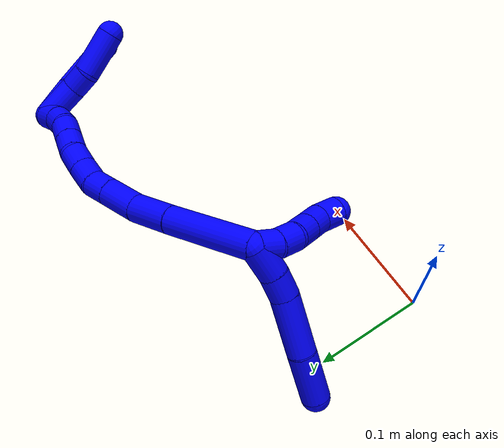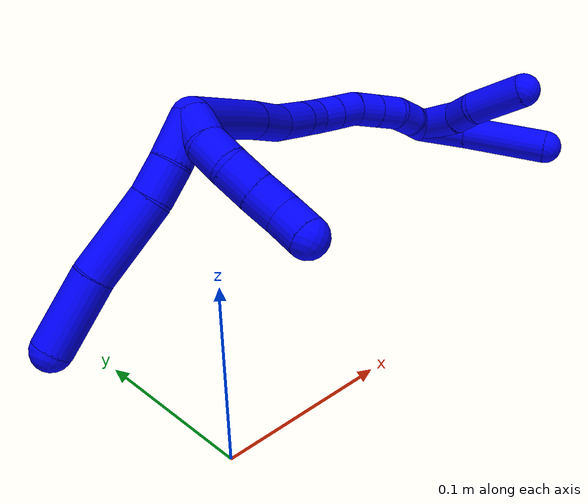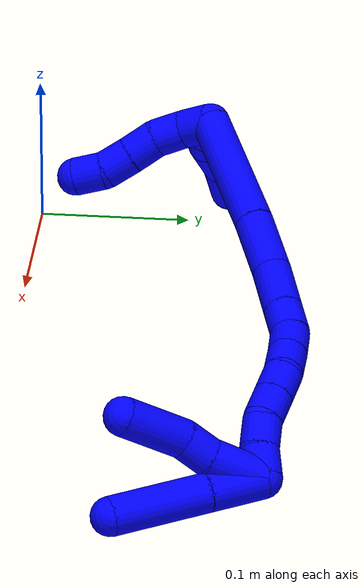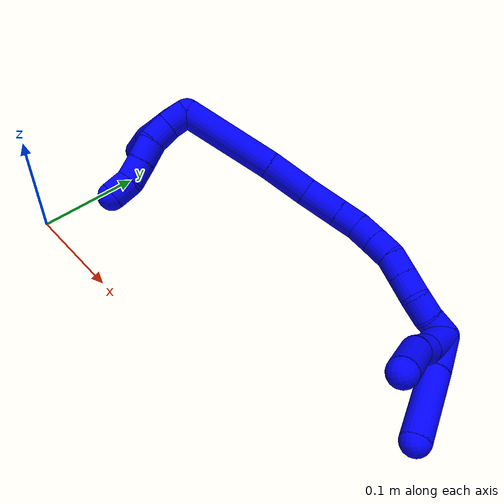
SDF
<sdf version="1.7">
 <world name="default">
  <model name="1">
   <static>0</static>
   <link name="1">
    <collision name="collision-cylinder-e_1_2_8">
     <pose>0.000418 0.001269 -0.014081 -3.05172 0.029547 -0.634919</pose>
     <geometry><cylinder><radius>0.0125</radius><length>0.028289</length></cylinder></geometry>
     <surface>
      <friction><ode><mu>1.16</mu><mu2>1.16</mu2><slip1>0</slip1><slip2>0</slip2></ode></friction>
      <contact><ode><kp>1e+06</kp><kd>1</kd><max_vel>0</max_vel><min_depth>0.001</min_depth></ode></contact>
     </surface>
    </collision>
    <visual name="visual-cylinder-e_1_2_8">
     <pose>0.000418 0.001269 -0.014081 -3.05172 0.029547 -0.634919</pose>
     <geometry><cylinder><radius>0.0125</radius><length>0.028289</length></cylinder></geometry>
     <material><ambient>0 0 1 1</ambient></material>
    </visual>
    <collision name="collision-cylinder-e_2_8_9">
     <pose>0.001131 0.004916 -0.038998 -2.92556 0.026648 -0.244531</pose>
     <geometry><cylinder><radius>0.0125</radius><length>0.022195</length></cylinder></geometry>
     <surface>
      <friction><ode><mu>1.16</mu><mu2>1.16</mu2><slip1>0</slip1><slip2>0</slip2></ode></friction>
      <contact><ode><kp>1e+06</kp><kd>1</kd><max_vel>0</max_vel><min_depth>0.001</min_depth></ode></contact>
     </surface>
    </collision>
    <visual name="visual-cylinder-e_2_8_9">
     <pose>0.001131 0.004916 -0.038998 -2.92556 0.026648 -0.244531</pose>
     <geometry><cylinder><radius>0.0125</radius><length>0.022195</length></cylinder></geometry>
     <material><ambient>0 0 1 1</ambient></material>
    </visual>
    <collision name="collision-cylinder-e_3_9_10">
     <pose>-6.1e-05 0.016591 -0.074307 -2.77855 -0.05678 0.307005</pose>
     <geometry><cylinder><radius>0.0125</radius><length>0.052444</length></cylinder></geometry>
     <surface>
      <friction><ode><mu>1.16</mu><mu2>1.16</mu2><slip1>0</slip1><slip2>0</slip2></ode></friction>
      <contact><ode><kp>1e+06</kp><kd>1</kd><max_vel>0</max_vel><min_depth>0.001</min_depth></ode></contact>
     </surface>
    </collision>
    <visual name="visual-cylinder-e_3_9_10">
     <pose>-6.1e-05 0.016591 -0.074307 -2.77855 -0.05678 0.307005</pose>
     <geometry><cylinder><radius>0.0125</radius><length>0.052444</length></cylinder></geometry>
     <material><ambient>0 0 1 1</ambient></material>
    </visual>
    <collision name="collision-cylinder-e_4_10_6">
     <pose>0.000226 0.033937 -0.120826 -2.79152 0.075484 -0.420722</pose>
     <geometry><cylinder><radius>0.0125</radius><length>0.047072</length></cylinder></geometry>
     <surface>
      <friction><ode><mu>1.16</mu><mu2>1.16</mu2><slip1>0</slip1><slip2>0</slip2></ode></friction>
      <contact><ode><kp>1e+06</kp><kd>1</kd><max_vel>0</max_vel><min_depth>0.001</min_depth></ode></contact>
     </surface>
    </collision>
    <visual name="visual-cylinder-e_4_10_6">
     <pose>0.000226 0.033937 -0.120826 -2.79152 0.075484 -0.420722</pose>
     <geometry><cylinder><radius>0.0125</radius><length>0.047072</length></cylinder></geometry>
     <material><ambient>0 0 1 1</ambient></material>
    </visual>
    <collision name="collision-cylinder-e_1_2_11">
     <pose>0.003786 -0.006665 -0.006422 2.33767 0.38829 0.86644</pose>
     <geometry><cylinder><radius>0.0125</radius><length>0.02</length></cylinder></geometry>
     <surface>
      <friction><ode><mu>1.16</mu><mu2>1.16</mu2><slip1>0</slip1><slip2>0</slip2></ode></friction>
      <contact><ode><kp>1e+06</kp><kd>1</kd><max_vel>0</max_vel><min_depth>0.001</min_depth></ode></contact>
     </surface>
    </collision>
    <visual name="visual-cylinder-e_1_2_11">
     <pose>0.003786 -0.006665 -0.006422 2.33767 0.38829 0.86644</pose>
     <geometry><cylinder><radius>0.0125</radius><length>0.02</length></cylinder></geometry>
     <material><ambient>0 0 1 1</ambient></material>
    </visual>
    <collision name="collision-cylinder-e_2_11_12">
     <pose>0.013006 -0.020477 -0.017249 2.12307 0.574415 0.973115</pose>
     <geometry><cylinder><radius>0.0125</radius><length>0.02</length></cylinder></geometry>
     <surface>
      <friction><ode><mu>1.16</mu><mu2>1.16</mu2><slip1>0</slip1><slip2>0</slip2></ode></friction>
      <contact><ode><kp>1e+06</kp><kd>1</kd><max_vel>0</max_vel><min_depth>0.001</min_depth></ode></contact>
     </surface>
    </collision>
    <visual name="visual-cylinder-e_2_11_12">
     <pose>0.013006 -0.020477 -0.017249 2.12307 0.574415 0.973115</pose>
     <geometry><cylinder><radius>0.0125</radius><length>0.02</length></cylinder></geometry>
     <material><ambient>0 0 1 1</ambient></material>
    </visual>
    <collision name="collision-cylinder-e_3_12_13">
     <pose>0.026015 -0.033037 -0.025301 2.16374 0.859592 1.42237</pose>
     <geometry><cylinder><radius>0.0125</radius><length>0.02</length></cylinder></geometry>
     <surface>
      <friction><ode><mu>1.16</mu><mu2>1.16</mu2><slip1>0</slip1><slip2>0</slip2></ode></friction>
      <contact><ode><kp>1e+06</kp><kd>1</kd><max_vel>0</max_vel><min_depth>0.001</min_depth></ode></contact>
     </surface>
    </collision>
    <visual name="visual-cylinder-e_3_12_13">
     <pose>0.026015 -0.033037 -0.025301 2.16374 0.859592 1.42237</pose>
     <geometry><cylinder><radius>0.0125</radius><length>0.02</length></cylinder></geometry>
     <material><ambient>0 0 1 1</ambient></material>
    </visual>
    <collision name="collision-cylinder-e_4_13_14">
     <pose>0.040972 -0.044261 -0.032376 2.10368 0.830321 1.3145</pose>
     <geometry><cylinder><radius>0.0125</radius><length>0.02</length></cylinder></geometry>
     <surface>
      <friction><ode><mu>1.16</mu><mu2>1.16</mu2><slip1>0</slip1><slip2>0</slip2></ode></friction>
      <contact><ode><kp>1e+06</kp><kd>1</kd><max_vel>0</max_vel><min_depth>0.001</min_depth></ode></contact>
     </surface>
    </collision>
    <visual name="visual-cylinder-e_4_13_14">
     <pose>0.040972 -0.044261 -0.032376 2.10368 0.830321 1.3145</pose>
     <geometry><cylinder><radius>0.0125</radius><length>0.02</length></cylinder></geometry>
     <material><ambient>0 0 1 1</ambient></material>
    </visual>
    <collision name="collision-cylinder-e_5_14_5">
     <pose>0.053002 -0.057858 -0.04002 2.06718 0.483422 0.784849</pose>
     <geometry><cylinder><radius>0.0125</radius><length>0.02</length></cylinder></geometry>
     <surface>
      <friction><ode><mu>1.16</mu><mu2>1.16</mu2><slip1>0</slip1><slip2>0</slip2></ode></friction>
      <contact><ode><kp>1e+06</kp><kd>1</kd><max_vel>0</max_vel><min_depth>0.001</min_depth></ode></contact>
     </surface>
    </collision>
    <visual name="visual-cylinder-e_5_14_5">
     <pose>0.053002 -0.057858 -0.04002 2.06718 0.483422 0.784849</pose>
     <geometry><cylinder><radius>0.0125</radius><length>0.02</length></cylinder></geometry>
     <material><ambient>0 0 1 1</ambient></material>
    </visual>
    <collision name="collision-cylinder-e_1_2_15">
     <pose>0.029939 0.02298 0.019354 -0.870836 0.783643 -0.379792</pose>
     <geometry><cylinder><radius>0.0125</radius><length>0.084829</length></cylinder></geometry>
     <surface>
      <friction><ode><mu>1.16</mu><mu2>1.16</mu2><slip1>0</slip1><slip2>0</slip2></ode></friction>
      <contact><ode><kp>1e+06</kp><kd>1</kd><max_vel>0</max_vel><min_depth>0.001</min_depth></ode></contact>
     </surface>
    </collision>
    <visual name="visual-cylinder-e_1_2_15">
     <pose>0.029939 0.02298 0.019354 -0.870836 0.783643 -0.379792</pose>
     <geometry><cylinder><radius>0.0125</radius><length>0.084829</length></cylinder></geometry>
     <material><ambient>0 0 1 1</ambient></material>
    </visual>
    <collision name="collision-cylinder-e_2_15_16">
     <pose>0.074719 0.056178 0.047211 -0.876756 0.840363 -0.412942</pose>
     <geometry><cylinder><radius>0.0125</radius><length>0.039848</length></cylinder></geometry>
     <surface>
      <friction><ode><mu>1.16</mu><mu2>1.16</mu2><slip1>0</slip1><slip2>0</slip2></ode></friction>
      <contact><ode><kp>1e+06</kp><kd>1</kd><max_vel>0</max_vel><min_depth>0.001</min_depth></ode></contact>
     </surface>
    </collision>
    <visual name="visual-cylinder-e_2_15_16">
     <pose>0.074719 0.056178 0.047211 -0.876756 0.840363 -0.412942</pose>
     <geometry><cylinder><radius>0.0125</radius><length>0.039848</length></cylinder></geometry>
     <material><ambient>0 0 1 1</ambient></material>
    </visual>
    <collision name="collision-cylinder-e_3_16_17">
     <pose>0.101976 0.07311 0.065208 -0.615548 0.818113 -0.273879</pose>
     <geometry><cylinder><radius>0.0125</radius><length>0.034022</length></cylinder></geometry>
     <surface>
      <friction><ode><mu>1.16</mu><mu2>1.16</mu2><slip1>0</slip1><slip2>0</slip2></ode></friction>
      <contact><ode><kp>1e+06</kp><kd>1</kd><max_vel>0</max_vel><min_depth>0.001</min_depth></ode></contact>
     </surface>
    </collision>
    <visual name="visual-cylinder-e_3_16_17">
     <pose>0.101976 0.07311 0.065208 -0.615548 0.818113 -0.273879</pose>
     <geometry><cylinder><radius>0.0125</radius><length>0.034022</length></cylinder></geometry>
     <material><ambient>0 0 1 1</ambient></material>
    </visual>
    <collision name="collision-cylinder-e_4_17_18">
     <pose>0.12192 0.083918 0.080522 -0.612964 0.813671 -0.271031</pose>
     <geometry><cylinder><radius>0.0125</radius><length>0.020717</length></cylinder></geometry>
     <surface>
      <friction><ode><mu>1.16</mu><mu2>1.16</mu2><slip1>0</slip1><slip2>0</slip2></ode></friction>
      <contact><ode><kp>1e+06</kp><kd>1</kd><max_vel>0</max_vel><min_depth>0.001</min_depth></ode></contact>
     </surface>
    </collision>
    <visual name="visual-cylinder-e_4_17_18">
     <pose>0.12192 0.083918 0.080522 -0.612964 0.813671 -0.271031</pose>
     <geometry><cylinder><radius>0.0125</radius><length>0.020717</length></cylinder></geometry>
     <material><ambient>0 0 1 1</ambient></material>
    </visual>
    <collision name="collision-cylinder-e_5_18_19">
     <pose>0.137233 0.088679 0.09281 -0.102967 0.87487 -0.048186</pose>
     <geometry><cylinder><radius>0.0125</radius><length>0.020287</length></cylinder></geometry>
     <surface>
      <friction><ode><mu>1.16</mu><mu2>1.16</mu2><slip1>0</slip1><slip2>0</slip2></ode></friction>
      <contact><ode><kp>1e+06</kp><kd>1</kd><max_vel>0</max_vel><min_depth>0.001</min_depth></ode></contact>
     </surface>
    </collision>
    <visual name="visual-cylinder-e_5_18_19">
     <pose>0.137233 0.088679 0.09281 -0.102967 0.87487 -0.048186</pose>
     <geometry><cylinder><radius>0.0125</radius><length>0.020287</length></cylinder></geometry>
     <material><ambient>0 0 1 1</ambient></material>
    </visual>
    <collision name="collision-cylinder-e_6_19_20">
     <pose>0.152646 0.089481 0.105794 -0.020501 0.863811 -0.00945</pose>
     <geometry><cylinder><radius>0.0125</radius><length>0.020067</length></cylinder></geometry>
     <surface>
      <friction><ode><mu>1.16</mu><mu2>1.16</mu2><slip1>0</slip1><slip2>0</slip2></ode></friction>
      <contact><ode><kp>1e+06</kp><kd>1</kd><max_vel>0</max_vel><min_depth>0.001</min_depth></ode></contact>
     </surface>
    </collision>
    <visual name="visual-cylinder-e_6_19_20">
     <pose>0.152646 0.089481 0.105794 -0.020501 0.863811 -0.00945</pose>
     <geometry><cylinder><radius>0.0125</radius><length>0.020067</length></cylinder></geometry>
     <material><ambient>0 0 1 1</ambient></material>
    </visual>
    <collision name="collision-cylinder-e_7_20_21">
     <pose>0.169244 0.088732 0.116646 0.200864 1.11241 0.12513</pose>
     <geometry><cylinder><radius>0.0125</radius><length>0.020003</length></cylinder></geometry>
     <surface>
      <friction><ode><mu>1.16</mu><mu2>1.16</mu2><slip1>0</slip1><slip2>0</slip2></ode></friction>
      <contact><ode><kp>1e+06</kp><kd>1</kd><max_vel>0</max_vel><min_depth>0.001</min_depth></ode></contact>
     </surface>
    </collision>
    <visual name="visual-cylinder-e_7_20_21">
     <pose>0.169244 0.088732 0.116646 0.200864 1.11241 0.12513</pose>
     <geometry><cylinder><radius>0.0125</radius><length>0.020003</length></cylinder></geometry>
     <material><ambient>0 0 1 1</ambient></material>
    </visual>
    <collision name="collision-cylinder-e_8_21_22">
     <pose>0.187233 0.086915 0.125317 0.212204 1.11399 0.132459</pose>
     <geometry><cylinder><radius>0.0125</radius><length>0.0201</length></cylinder></geometry>
     <surface>
      <friction><ode><mu>1.16</mu><mu2>1.16</mu2><slip1>0</slip1><slip2>0</slip2></ode></friction>
      <contact><ode><kp>1e+06</kp><kd>1</kd><max_vel>0</max_vel><min_depth>0.001</min_depth></ode></contact>
     </surface>
    </collision>
    <visual name="visual-cylinder-e_8_21_22">
     <pose>0.187233 0.086915 0.125317 0.212204 1.11399 0.132459</pose>
     <geometry><cylinder><radius>0.0125</radius><length>0.0201</length></cylinder></geometry>
     <material><ambient>0 0 1 1</ambient></material>
    </visual>
    <collision name="collision-cylinder-e_9_22_23">
     <pose>0.205672 0.087961 0.132412 -0.62186 1.22462 -0.443975</pose>
     <geometry><cylinder><radius>0.0125</radius><length>0.020028</length></cylinder></geometry>
     <surface>
      <friction><ode><mu>1.16</mu><mu2>1.16</mu2><slip1>0</slip1><slip2>0</slip2></ode></friction>
      <contact><ode><kp>1e+06</kp><kd>1</kd><max_vel>0</max_vel><min_depth>0.001</min_depth></ode></contact>
     </surface>
    </collision>
    <visual name="visual-cylinder-e_9_22_23">
     <pose>0.205672 0.087961 0.132412 -0.62186 1.22462 -0.443975</pose>
     <geometry><cylinder><radius>0.0125</radius><length>0.020028</length></cylinder></geometry>
     <material><ambient>0 0 1 1</ambient></material>
    </visual>
    <collision name="collision-cylinder-e_10_23_1">
     <pose>0.223878 0.093857 0.13808 -0.932348 1.06397 -0.575851</pose>
     <geometry><cylinder><radius>0.0125</radius><length>0.0201</length></cylinder></geometry>
     <surface>
      <friction><ode><mu>1.16</mu><mu2>1.16</mu2><slip1>0</slip1><slip2>0</slip2></ode></friction>
      <contact><ode><kp>1e+06</kp><kd>1</kd><max_vel>0</max_vel><min_depth>0.001</min_depth></ode></contact>
     </surface>
    </collision>
    <visual name="visual-cylinder-e_10_23_1">
     <pose>0.223878 0.093857 0.13808 -0.932348 1.06397 -0.575851</pose>
     <geometry><cylinder><radius>0.0125</radius><length>0.0201</length></cylinder></geometry>
     <material><ambient>0 0 1 1</ambient></material>
    </visual>
    <collision name="collision-cylinder-e_1_1_24">
     <pose>0.24356 0.08309 0.142983 1.43577 0.633921 0.557996</pose>
     <geometry><cylinder><radius>0.0125</radius><length>0.036788</length></cylinder></geometry>
     <surface>
      <friction><ode><mu>1.16</mu><mu2>1.16</mu2><slip1>0</slip1><slip2>0</slip2></ode></friction>
      <contact><ode><kp>1e+06</kp><kd>1</kd><max_vel>0</max_vel><min_depth>0.001</min_depth></ode></contact>
     </surface>
    </collision>
    <visual name="visual-cylinder-e_1_1_24">
     <pose>0.24356 0.08309 0.142983 1.43577 0.633921 0.557996</pose>
     <geometry><cylinder><radius>0.0125</radius><length>0.036788</length></cylinder></geometry>
     <material><ambient>0 0 1 1</ambient></material>
    </visual>
    <collision name="collision-cylinder-e_2_24_4">
     <pose>0.273163 0.043051 0.147455 1.4734 0.633431 0.577927</pose>
     <geometry><cylinder><radius>0.0125</radius><length>0.063212</length></cylinder></geometry>
     <surface>
      <friction><ode><mu>1.16</mu><mu2>1.16</mu2><slip1>0</slip1><slip2>0</slip2></ode></friction>
      <contact><ode><kp>1e+06</kp><kd>1</kd><max_vel>0</max_vel><min_depth>0.001</min_depth></ode></contact>
     </surface>
    </collision>
    <visual name="visual-cylinder-e_2_24_4">
     <pose>0.273163 0.043051 0.147455 1.4734 0.633431 0.577927</pose>
     <geometry><cylinder><radius>0.0125</radius><length>0.063212</length></cylinder></geometry>
     <material><ambient>0 0 1 1</ambient></material>
    </visual>
    <collision name="collision-cylinder-e_1_1_25">
     <pose>0.233351 0.079652 0.143555 1.43009 0.037482 0.032548</pose>
     <geometry><cylinder><radius>0.0125</radius><length>0.036632</length></cylinder></geometry>
     <surface>
      <friction><ode><mu>1.16</mu><mu2>1.16</mu2><slip1>0</slip1><slip2>0</slip2></ode></friction>
      <contact><ode><kp>1e+06</kp><kd>1</kd><max_vel>0</max_vel><min_depth>0.001</min_depth></ode></contact>
     </surface>
    </collision>
    <visual name="visual-cylinder-e_1_1_25">
     <pose>0.233351 0.079652 0.143555 1.43009 0.037482 0.032548</pose>
     <geometry><cylinder><radius>0.0125</radius><length>0.036632</length></cylinder></geometry>
     <material><ambient>0 0 1 1</ambient></material>
    </visual>
    <collision name="collision-cylinder-e_2_25_26">
     <pose>0.232174 0.051777 0.148126 1.36808 -0.185013 -0.150998</pose>
     <geometry><cylinder><radius>0.0125</radius><length>0.02026</length></cylinder></geometry>
     <surface>
      <friction><ode><mu>1.16</mu><mu2>1.16</mu2><slip1>0</slip1><slip2>0</slip2></ode></friction>
      <contact><ode><kp>1e+06</kp><kd>1</kd><max_vel>0</max_vel><min_depth>0.001</min_depth></ode></contact>
     </surface>
    </collision>
    <visual name="visual-cylinder-e_2_25_26">
     <pose>0.232174 0.051777 0.148126 1.36808 -0.185013 -0.150998</pose>
     <geometry><cylinder><radius>0.0125</radius><length>0.02026</length></cylinder></geometry>
     <material><ambient>0 0 1 1</ambient></material>
    </visual>
    <collision name="collision-cylinder-e_3_26_3">
     <pose>0.232413 0.021761 0.157172 1.23636 0.097689 0.069501</pose>
     <geometry><cylinder><radius>0.0125</radius><length>0.043108</length></cylinder></geometry>
     <surface>
      <friction><ode><mu>1.16</mu><mu2>1.16</mu2><slip1>0</slip1><slip2>0</slip2></ode></friction>
      <contact><ode><kp>1e+06</kp><kd>1</kd><max_vel>0</max_vel><min_depth>0.001</min_depth></ode></contact>
     </surface>
    </collision>
    <visual name="visual-cylinder-e_3_26_3">
     <pose>0.232413 0.021761 0.157172 1.23636 0.097689 0.069501</pose>
     <geometry><cylinder><radius>0.0125</radius><length>0.043108</length></cylinder></geometry>
     <material><ambient>0 0 1 1</ambient></material>
    </visual>
    <collision name="collision-sphere-3">
     <pose>0.234515 0.001498 0.164213 0 -0 0</pose>
     <geometry><sphere><radius>0.0125</radius></sphere></geometry>
     <surface>
      <friction><ode><mu>1.16</mu><mu2>1.16</mu2><slip1>0</slip1><slip2>0</slip2></ode></friction>
      <contact><ode><kp>1e+06</kp><kd>1</kd><max_vel>0</max_vel><min_depth>0.001</min_depth></ode></contact>
     </surface>
    </collision>
    <visual name="visual-sphere-3">
     <pose>0.234515 0.001498 0.164213 0 -0 0</pose>
     <geometry><sphere><radius>0.0125</radius></sphere></geometry>
     <material><ambient>0 0 1 1</ambient></material>
    </visual>
    <collision name="collision-sphere-26">
     <pose>0.230311 0.042024 0.150131 0 -0 0</pose>
     <geometry><sphere><radius>0.0125</radius></sphere></geometry>
     <surface>
      <friction><ode><mu>1.16</mu><mu2>1.16</mu2><slip1>0</slip1><slip2>0</slip2></ode></friction>
      <contact><ode><kp>1e+06</kp><kd>1</kd><max_vel>0</max_vel><min_depth>0.001</min_depth></ode></contact>
     </surface>
    </collision>
    <visual name="visual-sphere-26">
     <pose>0.230311 0.042024 0.150131 0 -0 0</pose>
     <geometry><sphere><radius>0.0125</radius></sphere></geometry>
     <material><ambient>0 0 1 1</ambient></material>
    </visual>
    <collision name="collision-sphere-25">
     <pose>0.234038 0.06153 0.146121 0 -0 0</pose>
     <geometry><sphere><radius>0.0125</radius></sphere></geometry>
     <surface>
      <friction><ode><mu>1.16</mu><mu2>1.16</mu2><slip1>0</slip1><slip2>0</slip2></ode></friction>
      <contact><ode><kp>1e+06</kp><kd>1</kd><max_vel>0</max_vel><min_depth>0.001</min_depth></ode></contact>
     </surface>
    </collision>
    <visual name="visual-sphere-25">
     <pose>0.234038 0.06153 0.146121 0 -0 0</pose>
     <geometry><sphere><radius>0.0125</radius></sphere></geometry>
     <material><ambient>0 0 1 1</ambient></material>
    </visual>
    <collision name="collision-sphere-4">
     <pose>0.291871 0.017697 0.149933 0 -0 0</pose>
     <geometry><sphere><radius>0.0125</radius></sphere></geometry>
     <surface>
      <friction><ode><mu>1.16</mu><mu2>1.16</mu2><slip1>0</slip1><slip2>0</slip2></ode></friction>
      <contact><ode><kp>1e+06</kp><kd>1</kd><max_vel>0</max_vel><min_depth>0.001</min_depth></ode></contact>
     </surface>
    </collision>
    <visual name="visual-sphere-4">
     <pose>0.291871 0.017697 0.149933 0 -0 0</pose>
     <geometry><sphere><radius>0.0125</radius></sphere></geometry>
     <material><ambient>0 0 1 1</ambient></material>
    </visual>
    <collision name="collision-sphere-24">
     <pose>0.254454 0.068404 0.144978 0 -0 0</pose>
     <geometry><sphere><radius>0.0125</radius></sphere></geometry>
     <surface>
      <friction><ode><mu>1.16</mu><mu2>1.16</mu2><slip1>0</slip1><slip2>0</slip2></ode></friction>
      <contact><ode><kp>1e+06</kp><kd>1</kd><max_vel>0</max_vel><min_depth>0.001</min_depth></ode></contact>
     </surface>
    </collision>
    <visual name="visual-sphere-24">
     <pose>0.254454 0.068404 0.144978 0 -0 0</pose>
     <geometry><sphere><radius>0.0125</radius></sphere></geometry>
     <material><ambient>0 0 1 1</ambient></material>
    </visual>
    <collision name="collision-sphere-1">
     <pose>0.232665 0.097775 0.140988 0 -0 0</pose>
     <geometry><sphere><radius>0.0125</radius></sphere></geometry>
     <surface>
      <friction><ode><mu>1.16</mu><mu2>1.16</mu2><slip1>0</slip1><slip2>0</slip2></ode></friction>
      <contact><ode><kp>1e+06</kp><kd>1</kd><max_vel>0</max_vel><min_depth>0.001</min_depth></ode></contact>
     </surface>
    </collision>
    <visual name="visual-sphere-1">
     <pose>0.232665 0.097775 0.140988 0 -0 0</pose>
     <geometry><sphere><radius>0.0125</radius></sphere></geometry>
     <material><ambient>0 0 1 1</ambient></material>
    </visual>
    <collision name="collision-sphere-23">
     <pose>0.215092 0.08994 0.135173 0 -0 0</pose>
     <geometry><sphere><radius>0.0125</radius></sphere></geometry>
     <surface>
      <friction><ode><mu>1.16</mu><mu2>1.16</mu2><slip1>0</slip1><slip2>0</slip2></ode></friction>
      <contact><ode><kp>1e+06</kp><kd>1</kd><max_vel>0</max_vel><min_depth>0.001</min_depth></ode></contact>
     </surface>
    </collision>
    <visual name="visual-sphere-23">
     <pose>0.215092 0.08994 0.135173 0 -0 0</pose>
     <geometry><sphere><radius>0.0125</radius></sphere></geometry>
     <material><ambient>0 0 1 1</ambient></material>
    </visual>
    <collision name="collision-sphere-22">
     <pose>0.196252 0.085981 0.12965 0 -0 0</pose>
     <geometry><sphere><radius>0.0125</radius></sphere></geometry>
     <surface>
      <friction><ode><mu>1.16</mu><mu2>1.16</mu2><slip1>0</slip1><slip2>0</slip2></ode></friction>
      <contact><ode><kp>1e+06</kp><kd>1</kd><max_vel>0</max_vel><min_depth>0.001</min_depth></ode></contact>
     </surface>
    </collision>
    <visual name="visual-sphere-22">
     <pose>0.196252 0.085981 0.12965 0 -0 0</pose>
     <geometry><sphere><radius>0.0125</radius></sphere></geometry>
     <material><ambient>0 0 1 1</ambient></material>
    </visual>
    <collision name="collision-sphere-21">
     <pose>0.178213 0.087849 0.120983 0 -0 0</pose>
     <geometry><sphere><radius>0.0125</radius></sphere></geometry>
     <surface>
      <friction><ode><mu>1.16</mu><mu2>1.16</mu2><slip1>0</slip1><slip2>0</slip2></ode></friction>
      <contact><ode><kp>1e+06</kp><kd>1</kd><max_vel>0</max_vel><min_depth>0.001</min_depth></ode></contact>
     </surface>
    </collision>
    <visual name="visual-sphere-21">
     <pose>0.178213 0.087849 0.120983 0 -0 0</pose>
     <geometry><sphere><radius>0.0125</radius></sphere></geometry>
     <material><ambient>0 0 1 1</ambient></material>
    </visual>
    <collision name="collision-sphere-11">
     <pose>0.007572 -0.01333 -0.012845 0 -0 0</pose>
     <geometry><sphere><radius>0.0125</radius></sphere></geometry>
     <surface>
      <friction><ode><mu>1.16</mu><mu2>1.16</mu2><slip1>0</slip1><slip2>0</slip2></ode></friction>
      <contact><ode><kp>1e+06</kp><kd>1</kd><max_vel>0</max_vel><min_depth>0.001</min_depth></ode></contact>
     </surface>
    </collision>
    <visual name="visual-sphere-11">
     <pose>0.007572 -0.01333 -0.012845 0 -0 0</pose>
     <geometry><sphere><radius>0.0125</radius></sphere></geometry>
     <material><ambient>0 0 1 1</ambient></material>
    </visual>
    <collision name="collision-sphere-6">
     <pose>0.002001 0.041986 -0.142872 0 -0 0</pose>
     <geometry><sphere><radius>0.0125</radius></sphere></geometry>
     <surface>
      <friction><ode><mu>1.16</mu><mu2>1.16</mu2><slip1>0</slip1><slip2>0</slip2></ode></friction>
      <contact><ode><kp>1e+06</kp><kd>1</kd><max_vel>0</max_vel><min_depth>0.001</min_depth></ode></contact>
     </surface>
    </collision>
    <visual name="visual-sphere-6">
     <pose>0.002001 0.041986 -0.142872 0 -0 0</pose>
     <geometry><sphere><radius>0.0125</radius></sphere></geometry>
     <material><ambient>0 0 1 1</ambient></material>
    </visual>
    <collision name="collision-sphere-10">
     <pose>-0.001549 0.025888 -0.09878 0 -0 0</pose>
     <geometry><sphere><radius>0.0125</radius></sphere></geometry>
     <surface>
      <friction><ode><mu>1.16</mu><mu2>1.16</mu2><slip1>0</slip1><slip2>0</slip2></ode></friction>
      <contact><ode><kp>1e+06</kp><kd>1</kd><max_vel>0</max_vel><min_depth>0.001</min_depth></ode></contact>
     </surface>
    </collision>
    <visual name="visual-sphere-10">
     <pose>-0.001549 0.025888 -0.09878 0 -0 0</pose>
     <geometry><sphere><radius>0.0125</radius></sphere></geometry>
     <material><ambient>0 0 1 1</ambient></material>
    </visual>
    <collision name="collision-sphere-9">
     <pose>0.001427 0.007294 -0.049833 0 -0 0</pose>
     <geometry><sphere><radius>0.0125</radius></sphere></geometry>
     <surface>
      <friction><ode><mu>1.16</mu><mu2>1.16</mu2><slip1>0</slip1><slip2>0</slip2></ode></friction>
      <contact><ode><kp>1e+06</kp><kd>1</kd><max_vel>0</max_vel><min_depth>0.001</min_depth></ode></contact>
     </surface>
    </collision>
    <visual name="visual-sphere-9">
     <pose>0.001427 0.007294 -0.049833 0 -0 0</pose>
     <geometry><sphere><radius>0.0125</radius></sphere></geometry>
     <material><ambient>0 0 1 1</ambient></material>
    </visual>
    <collision name="collision-sphere-2">
     <geometry><sphere><radius>0.0125</radius></sphere></geometry>
     <surface>
      <friction><ode><mu>1.16</mu><mu2>1.16</mu2><slip1>0</slip1><slip2>0</slip2></ode></friction>
      <contact><ode><kp>1e+06</kp><kd>1</kd><max_vel>0</max_vel><min_depth>0.001</min_depth></ode></contact>
     </surface>
    </collision>
    <visual name="visual-sphere-2">
     <geometry><sphere><radius>0.0125</radius></sphere></geometry>
     <material><ambient>0 0 1 1</ambient></material>
    </visual>
    <collision name="collision-sphere-19">
     <pose>0.145018 0.089347 0.099278 0 -0 0</pose>
     <geometry><sphere><radius>0.0125</radius></sphere></geometry>
     <surface>
      <friction><ode><mu>1.16</mu><mu2>1.16</mu2><slip1>0</slip1><slip2>0</slip2></ode></friction>
      <contact><ode><kp>1e+06</kp><kd>1</kd><max_vel>0</max_vel><min_depth>0.001</min_depth></ode></contact>
     </surface>
    </collision>
    <visual name="visual-sphere-19">
     <pose>0.145018 0.089347 0.099278 0 -0 0</pose>
     <geometry><sphere><radius>0.0125</radius></sphere></geometry>
     <material><ambient>0 0 1 1</ambient></material>
    </visual>
    <collision name="collision-sphere-8">
     <pose>0.000836 0.002538 -0.028162 0 -0 0</pose>
     <geometry><sphere><radius>0.0125</radius></sphere></geometry>
     <surface>
      <friction><ode><mu>1.16</mu><mu2>1.16</mu2><slip1>0</slip1><slip2>0</slip2></ode></friction>
      <contact><ode><kp>1e+06</kp><kd>1</kd><max_vel>0</max_vel><min_depth>0.001</min_depth></ode></contact>
     </surface>
    </collision>
    <visual name="visual-sphere-8">
     <pose>0.000836 0.002538 -0.028162 0 -0 0</pose>
     <geometry><sphere><radius>0.0125</radius></sphere></geometry>
     <material><ambient>0 0 1 1</ambient></material>
    </visual>
    <collision name="collision-sphere-12">
     <pose>0.018439 -0.027624 -0.021653 0 -0 0</pose>
     <geometry><sphere><radius>0.0125</radius></sphere></geometry>
     <surface>
      <friction><ode><mu>1.16</mu><mu2>1.16</mu2><slip1>0</slip1><slip2>0</slip2></ode></friction>
      <contact><ode><kp>1e+06</kp><kd>1</kd><max_vel>0</max_vel><min_depth>0.001</min_depth></ode></contact>
     </surface>
    </collision>
    <visual name="visual-sphere-12">
     <pose>0.018439 -0.027624 -0.021653 0 -0 0</pose>
     <geometry><sphere><radius>0.0125</radius></sphere></geometry>
     <material><ambient>0 0 1 1</ambient></material>
    </visual>
    <collision name="collision-sphere-13">
     <pose>0.033591 -0.03845 -0.028948 0 -0 0</pose>
     <geometry><sphere><radius>0.0125</radius></sphere></geometry>
     <surface>
      <friction><ode><mu>1.16</mu><mu2>1.16</mu2><slip1>0</slip1><slip2>0</slip2></ode></friction>
      <contact><ode><kp>1e+06</kp><kd>1</kd><max_vel>0</max_vel><min_depth>0.001</min_depth></ode></contact>
     </surface>
    </collision>
    <visual name="visual-sphere-13">
     <pose>0.033591 -0.03845 -0.028948 0 -0 0</pose>
     <geometry><sphere><radius>0.0125</radius></sphere></geometry>
     <material><ambient>0 0 1 1</ambient></material>
    </visual>
    <collision name="collision-sphere-14">
     <pose>0.048353 -0.050072 -0.035803 0 -0 0</pose>
     <geometry><sphere><radius>0.0125</radius></sphere></geometry>
     <surface>
      <friction><ode><mu>1.16</mu><mu2>1.16</mu2><slip1>0</slip1><slip2>0</slip2></ode></friction>
      <contact><ode><kp>1e+06</kp><kd>1</kd><max_vel>0</max_vel><min_depth>0.001</min_depth></ode></contact>
     </surface>
    </collision>
    <visual name="visual-sphere-14">
     <pose>0.048353 -0.050072 -0.035803 0 -0 0</pose>
     <geometry><sphere><radius>0.0125</radius></sphere></geometry>
     <material><ambient>0 0 1 1</ambient></material>
    </visual>
    <collision name="collision-sphere-5">
     <pose>0.05765 -0.065643 -0.044236 0 -0 0</pose>
     <geometry><sphere><radius>0.0125</radius></sphere></geometry>
     <surface>
      <friction><ode><mu>1.16</mu><mu2>1.16</mu2><slip1>0</slip1><slip2>0</slip2></ode></friction>
      <contact><ode><kp>1e+06</kp><kd>1</kd><max_vel>0</max_vel><min_depth>0.001</min_depth></ode></contact>
     </surface>
    </collision>
    <visual name="visual-sphere-5">
     <pose>0.05765 -0.065643 -0.044236 0 -0 0</pose>
     <geometry><sphere><radius>0.0125</radius></sphere></geometry>
     <material><ambient>0 0 1 1</ambient></material>
    </visual>
    <collision name="collision-sphere-15">
     <pose>0.059878 0.04596 0.038708 0 -0 0</pose>
     <geometry><sphere><radius>0.0125</radius></sphere></geometry>
     <surface>
      <friction><ode><mu>1.16</mu><mu2>1.16</mu2><slip1>0</slip1><slip2>0</slip2></ode></friction>
      <contact><ode><kp>1e+06</kp><kd>1</kd><max_vel>0</max_vel><min_depth>0.001</min_depth></ode></contact>
     </surface>
    </collision>
    <visual name="visual-sphere-15">
     <pose>0.059878 0.04596 0.038708 0 -0 0</pose>
     <geometry><sphere><radius>0.0125</radius></sphere></geometry>
     <material><ambient>0 0 1 1</ambient></material>
    </visual>
    <collision name="collision-sphere-16">
     <pose>0.08956 0.066396 0.055714 0 -0 0</pose>
     <geometry><sphere><radius>0.0125</radius></sphere></geometry>
     <surface>
      <friction><ode><mu>1.16</mu><mu2>1.16</mu2><slip1>0</slip1><slip2>0</slip2></ode></friction>
      <contact><ode><kp>1e+06</kp><kd>1</kd><max_vel>0</max_vel><min_depth>0.001</min_depth></ode></contact>
     </surface>
    </collision>
    <visual name="visual-sphere-16">
     <pose>0.08956 0.066396 0.055714 0 -0 0</pose>
     <geometry><sphere><radius>0.0125</radius></sphere></geometry>
     <material><ambient>0 0 1 1</ambient></material>
    </visual>
    <collision name="collision-sphere-17">
     <pose>0.114391 0.079825 0.074703 0 -0 0</pose>
     <geometry><sphere><radius>0.0125</radius></sphere></geometry>
     <surface>
      <friction><ode><mu>1.16</mu><mu2>1.16</mu2><slip1>0</slip1><slip2>0</slip2></ode></friction>
      <contact><ode><kp>1e+06</kp><kd>1</kd><max_vel>0</max_vel><min_depth>0.001</min_depth></ode></contact>
     </surface>
    </collision>
    <visual name="visual-sphere-17">
     <pose>0.114391 0.079825 0.074703 0 -0 0</pose>
     <geometry><sphere><radius>0.0125</radius></sphere></geometry>
     <material><ambient>0 0 1 1</ambient></material>
    </visual>
    <collision name="collision-sphere-18">
     <pose>0.129449 0.088011 0.086342 0 -0 0</pose>
     <geometry><sphere><radius>0.0125</radius></sphere></geometry>
     <surface>
      <friction><ode><mu>1.16</mu><mu2>1.16</mu2><slip1>0</slip1><slip2>0</slip2></ode></friction>
      <contact><ode><kp>1e+06</kp><kd>1</kd><max_vel>0</max_vel><min_depth>0.001</min_depth></ode></contact>
     </surface>
    </collision>
    <visual name="visual-sphere-18">
     <pose>0.129449 0.088011 0.086342 0 -0 0</pose>
     <geometry><sphere><radius>0.0125</radius></sphere></geometry>
     <material><ambient>0 0 1 1</ambient></material>
    </visual>
    <collision name="collision-sphere-20">
     <pose>0.160275 0.089615 0.11231 0 -0 0</pose>
     <geometry><sphere><radius>0.0125</radius></sphere></geometry>
     <surface>
      <friction><ode><mu>1.16</mu><mu2>1.16</mu2><slip1>0</slip1><slip2>0</slip2></ode></friction>
      <contact><ode><kp>1e+06</kp><kd>1</kd><max_vel>0</max_vel><min_depth>0.001</min_depth></ode></contact>
     </surface>
    </collision>
    <visual name="visual-sphere-20">
     <pose>0.160275 0.089615 0.11231 0 -0 0</pose>
     <geometry><sphere><radius>0.0125</radius></sphere></geometry>
     <material><ambient>0 0 1 1</ambient></material>
    </visual>
    <inertial>
     <pose>0.113874 0.038971 0.050714 0 -0 0</pose>
     <mass>0.75</mass>
     <inertia>
      <ixx>0.000139</ixx>
      <ixy>0</ixy>
      <ixz>0</ixz>
      <iyy>4.5e-05</iyy>
      <iyz>0</iyz>
      <izz>-8.1e-05</izz>
     </inertia>
    </inertial>
   </link>
   <pose>0.080018 0.121377 0.119488 -0.534543 0.739334 -0.410362</pose>
  </model>
 </world>
</sdf>
